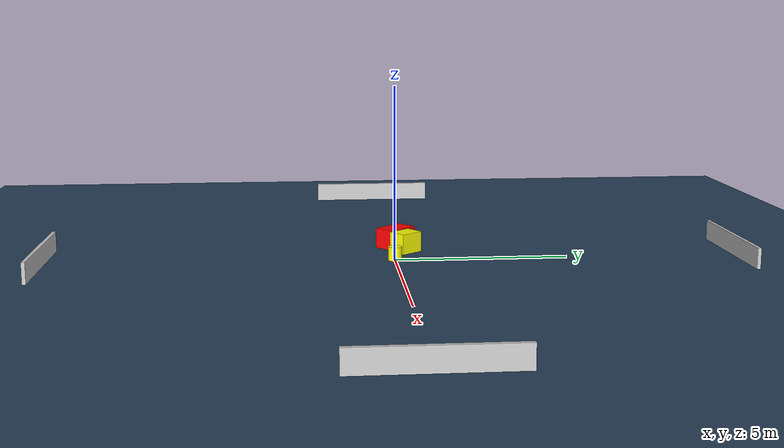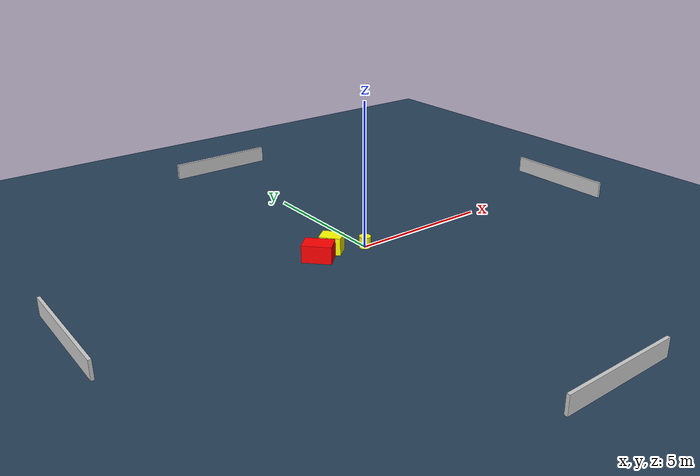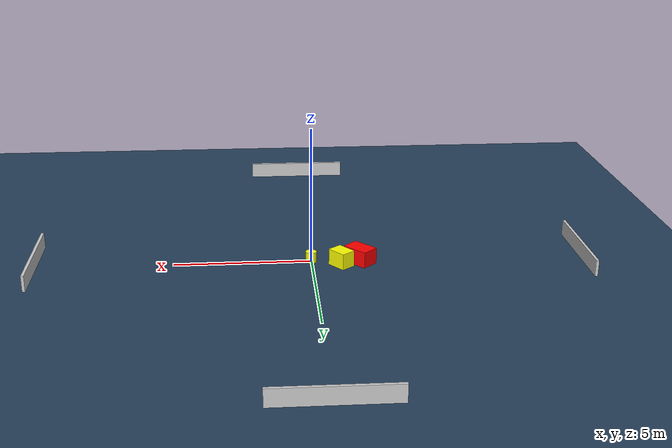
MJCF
<?xml version="1.0" ?>
<mujoco model="generated_environment">
  <option timestep="0.01" integrator="RK4" cone="elliptic"/>
  <default>
    <geom density="1"/>
  </default>
  <asset>
    <texture builtin="gradient" height="3072" name="skybox" rgb1="0.3 0.5 0.7" rgb2="0 0 0" type="skybox" width="512"/>
    <texture builtin="checker" height="300" name="groundplane" rgb1="0.2 0.3 0.4" rgb2="0.1 0.2 0.3" type="2d" width="300"/>
    <material name="groundplane" reflectance="0.2" texrepeat="5 5" texture="groundplane"/>
  </asset>
  <worldbody>
    <light dir="0 0 -1" directional="true" pos="0 0 1.5"/>
    <geom condim="3" friction="0.5 0.005 0.001" material="groundplane" name="floor" pos="0 0 0" size="0 0 0.05" type="plane"/>
    <body name="walls">
      <geom name="wall_1" condim="4" pos="-10.0 0.0 0.3" rgba="0.800000011920929 0.800000011920929 0.800000011920929 1.0" size="0.05 2.0 0.3" type="box"/>
      <geom name="wall_2" condim="4" pos="10.0 0.0 0.3" rgba="0.800000011920929 0.800000011920929 0.800000011920929 1.0" size="0.05 2.0 0.3" type="box"/>
      <geom name="wall_3" condim="4" pos="0.0 -10.0 0.3" rgba="0.800000011920929 0.800000011920929 0.800000011920929 1.0" size="2.0 0.05 0.3" type="box"/>
      <geom name="wall_4" condim="4" pos="0.0 10.0 0.3" rgba="0.800000011920929 0.800000011920929 0.800000011920929 1.0" size="2.0 0.05 0.3" type="box"/>
    </body>
    <body name="robot">
      <joint name="joint_x" type="slide" pos="0 0 0" axis="1 0 0"/>
      <joint name="joint_y" type="slide" pos="0 0 0" axis="0 1 0"/>
      <geom name="robot" type="cylinder" pos="0.0 0.0 0.2" size="0.2 0.2 0.0" mass="5.0" friction="1.0 0.005 0.0001" condim="4" rgba="1.0 1.0 0.0 1.0"/>
    </body>
    <body name="obstacle_1_movable">
      <geom name="obstacle_1_movable" condim="4" pos="-1.077044851446279 0.40775668381632174 0.3" euler="0 0 128.61769046511108" friction="0.0 0.005 0.001" rgba="1.0 1.0 0.0 1.0" size="0.3697185253263149 0.28088103872224285 0.3" type="box" mass="0.1"/>
      <joint type="free"/>
    </body>
    <body name="obstacle_2_static">
      <geom name="obstacle_2_static" condim="4" pos="-1.7805786634739296 0.16907604736517146 0.3" euler="0 0 313.455850076655" friction="0.0 0.005 0.001" rgba="1.0 0.0 0.0 1.0" size="0.4986054127529734 0.3326501508050279 0.3" type="box"/>
    </body>
  </worldbody>
  <actuator>
    <motor name="actuator_x" joint="joint_x" gear="1" ctrlrange="-1 1"/>
    <motor name="actuator_y" joint="joint_y" gear="1" ctrlrange="-1 1"/>
  </actuator>
</mujoco>
